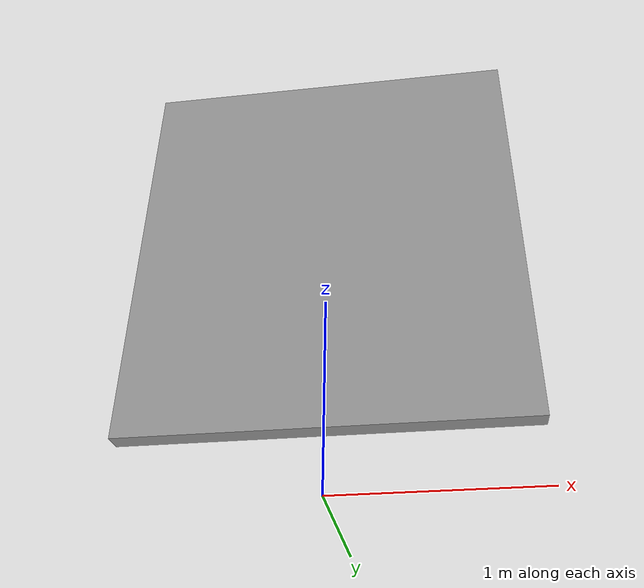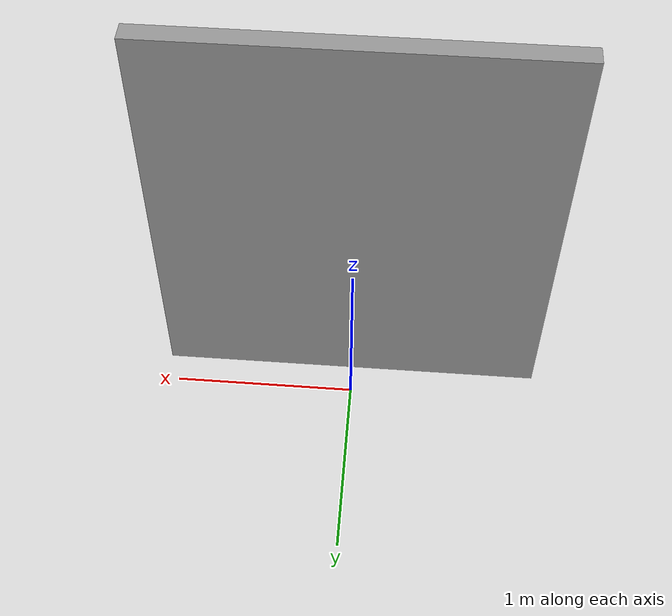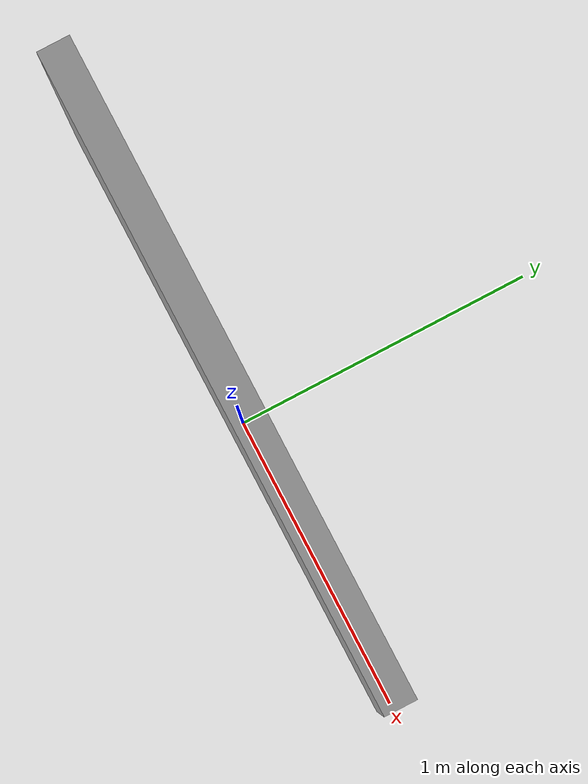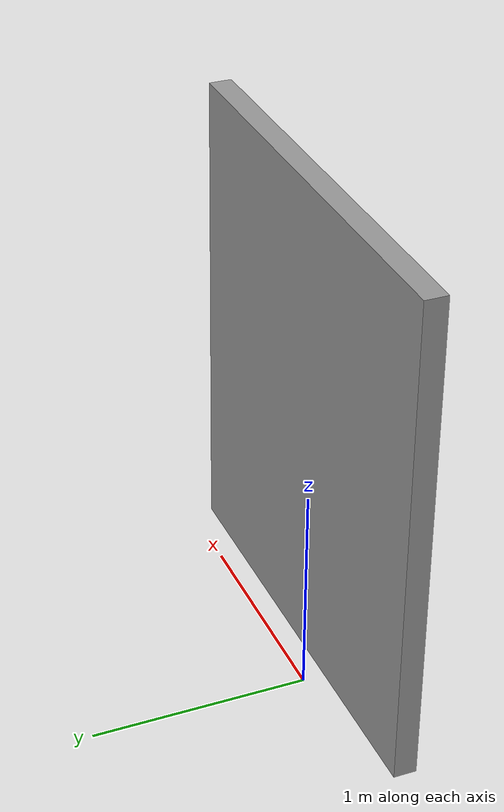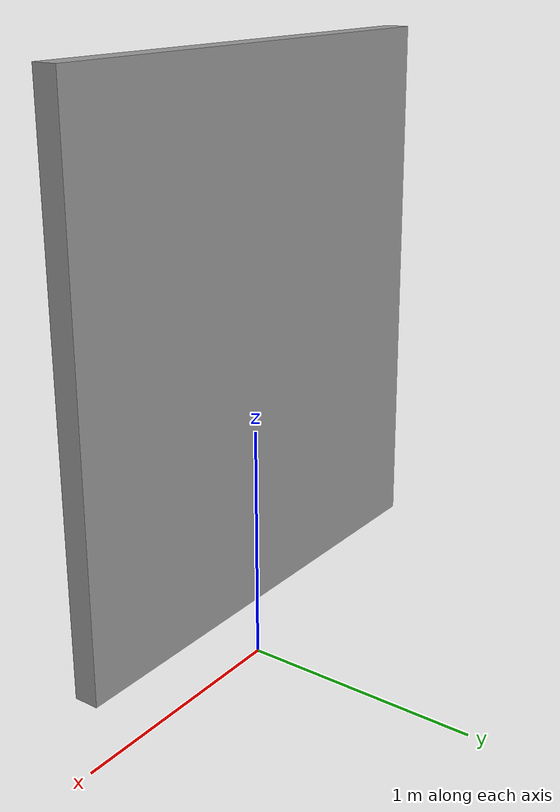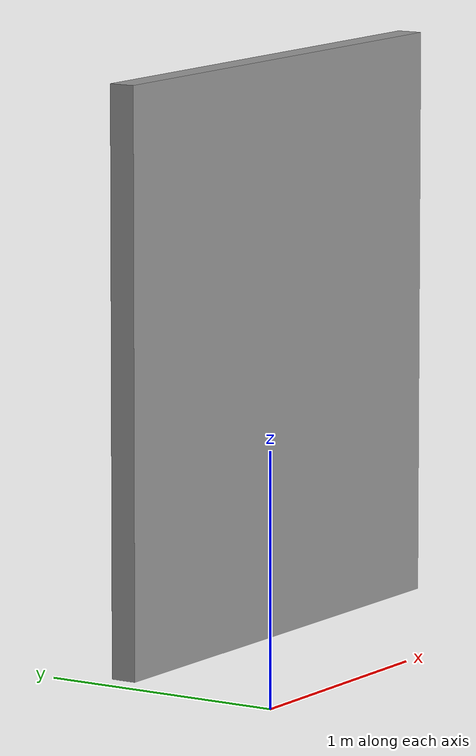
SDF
<?xml version="1.0" ?>
<sdf version="1.4">
  <model name="grey_wall_100">
    <static>true</static>
    <link name="link">
      <pose>0 0 1.4 0 0 0</pose>
      <collision name="collision">
        <geometry>
          <box>
            <size>2.0 0.1 2.2</size>
          </box>
        </geometry>
      </collision>
      <visual name="visual">
        <cast_shadows>false</cast_shadows>
        <geometry>
          <box>
            <size>2.0 0.1 2.2</size>
          </box>
        </geometry>
        <material>
          <script>
            <uri>model://grey_wall_100/materials/scripts</uri>
            <uri>model://grey_wall_100/materials/textures</uri>
            <name>vrc/grey_wall_100</name>
          </script>
        </material>
      </visual>
    </link>
  </model>
</sdf>
